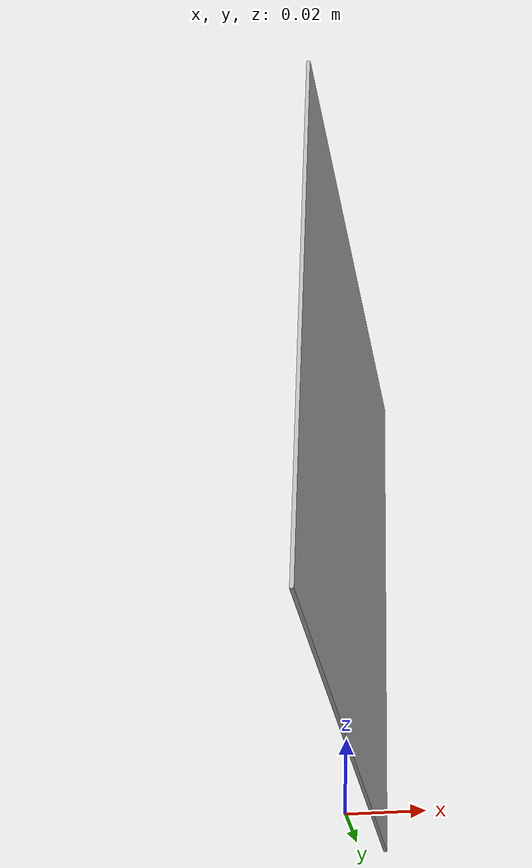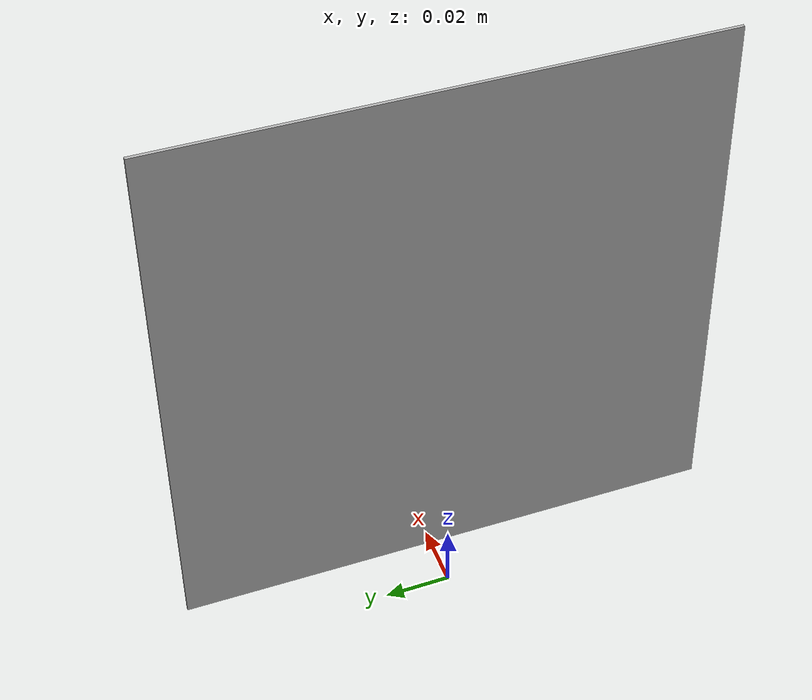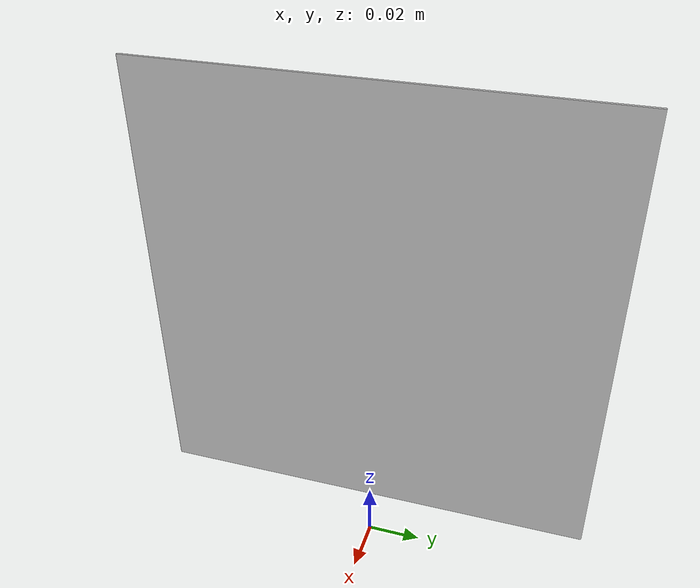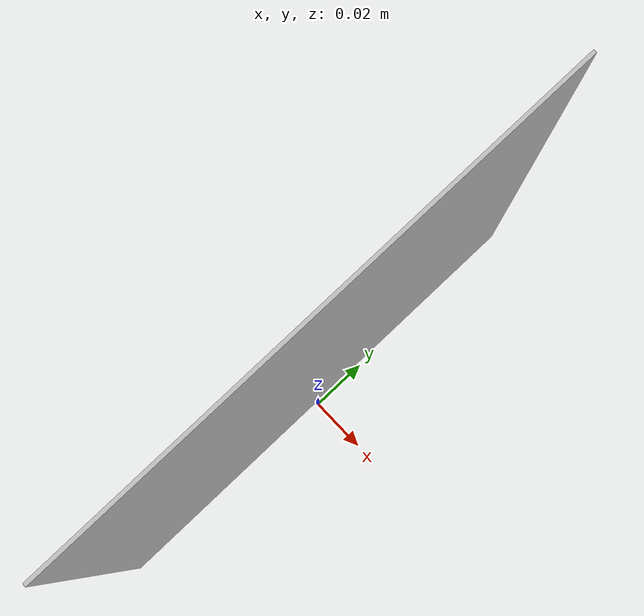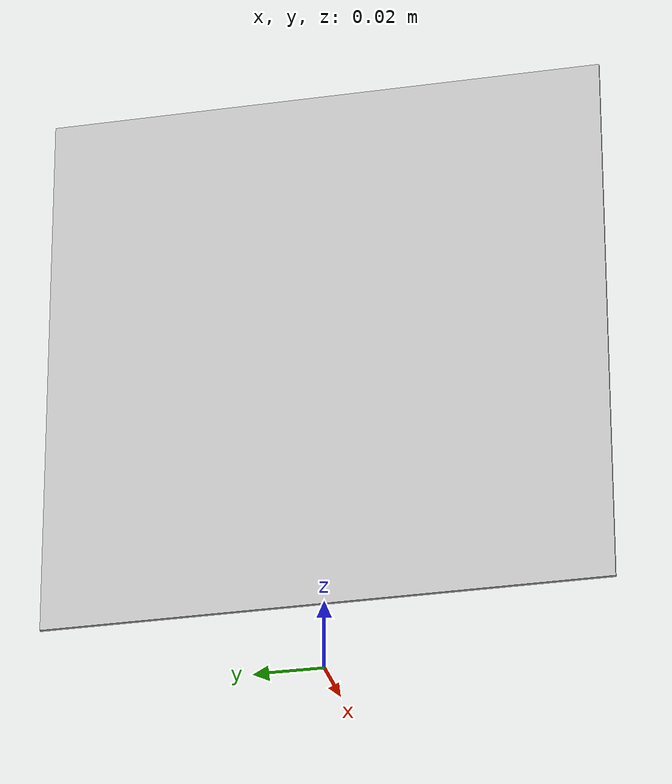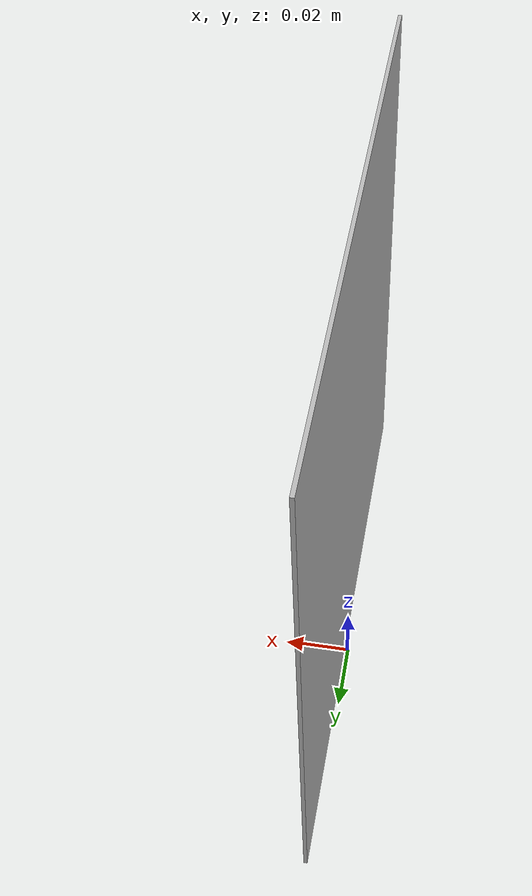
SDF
<?xml version="1.0" ?>
<sdf version="1.5">
  <model name="Tag19">
    <static>true</static>
    <link name="link">
      <pose>0 0 0.1 0 0 1.57</pose>
      <collision name="collision">
        <geometry>
          <box>
            <size>.1615 0.001 .1615</size>
          </box>
        </geometry>
      </collision>
      <visual name="visual">
        <cast_shadows>false</cast_shadows>
        <geometry>
          <box>
            <size>.1615 0.001 .1615</size>
          </box>
        </geometry>
        <material>
          <script>
            <uri>model://Tag19/materials/scripts</uri>
            <uri>model://Tag19/materials/textures</uri>
            <name>vrc/Tag19</name>
          </script>
        </material>
      </visual>
    </link>
  </model>
</sdf>
